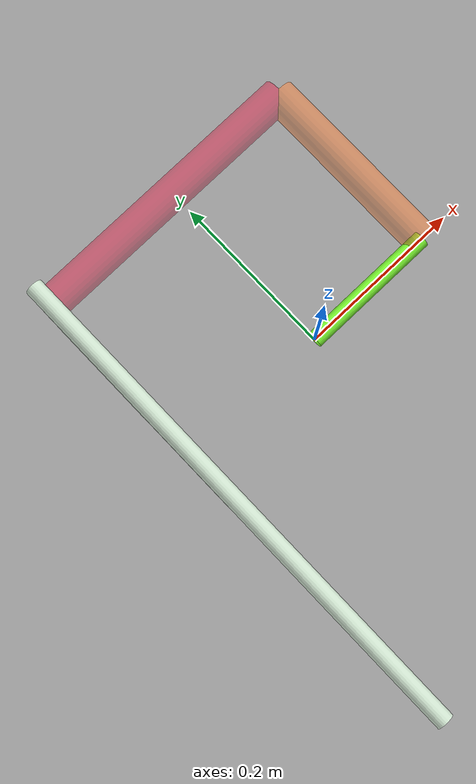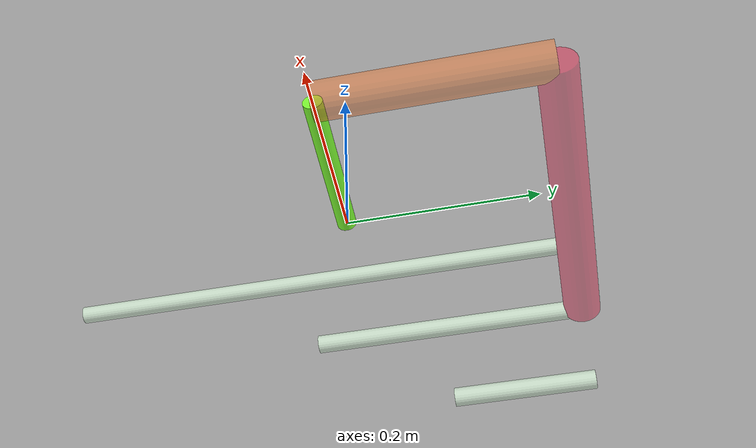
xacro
<?xml version="1.0" encoding="utf-8"?>
<robot xmlns:xacro="http://ros.org/wiki/xacro" name="example" >

  <!-- manipulator as it is -->
  <xacro:include filename="$(find example_description)/urdf/robot.xacro" />

  <!-- arm -->
  <xacro:example_xacro />

  <link name="world" />

    <joint name="joint_world_link001"
            type = "revolute">
        <origin xyz = "0 0 0" rpy="0 0 0" />
        <parent link="world"/>
        <child link="link_001" />
        <axis xyz="0 1 0" />
        <limit lower="-6" upper="6" effort="0" velocity="0" />
    </joint>
</robot>

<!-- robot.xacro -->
<robot xmlns:xacro="http://ros.org/wiki/xacro">

<xacro:macro name="example_xacro" params="">
<xacro:property name="l1_len" value="0.165"/>
<xacro:property name="l2_len" value="0.23"/>
<xacro:property name="l3_len" value="0.35"/>
<xacro:property name="l4_len" value="0.3"/>

    <link name="link_001">
        <visual>
            <origin xyz="${l1_len/2.} 0 0" rpy="0 ${pi/2} 0" />
            <geometry >
                <cylinder radius="0.01" length="${l1_len}"/>
            </geometry>
            <material name="link1_color">
                <color rgba="0.5 1 0.2 1"/>
            </material>
        </visual>
    </link>

    <link name="link_002">
        <visual>
            <origin xyz="${l2_len/2 * -5.00000000e-01} ${l2_len/2*8.66025404e-01} ${l2_len/2* 0}" rpy="1.5707963267948966 -1.0471975511965976 0.5235987755982987" />
            <geometry >
                <cylinder radius="0.02" length="${l2_len}"/>
            </geometry>
            <material name="link2_color">
                <color rgba="1 0.5 0.2 0.5"/>
            </material>
        </visual>
    </link>

    <joint name="joint_link001_link002" type = "revolute">
        <origin xyz = "${l1_len} 0 0" rpy="-0.7137243789447655 0.848062078981481 -0.8570719478501307" />
        <parent link="link_001"/>
        <child link="link_002" />
        <axis xyz="0.4330127 0.25 0.8660254" />
        <limit lower="-6" upper="6" effort="0" velocity="0" />
    </joint>

    <link name="link_003">
        <visual>
            <origin xyz="0 ${l3_len/2} 0" rpy="${-pi/2} 0 0" />
            <geometry >
                <cylinder radius="0.02" length="${l3_len}"/>
            </geometry>
            <material name="link3_color">
                <color rgba="1 0 0.2 0.4"/>
            </material>
        </visual>
    </link>

    <link name="link_004">
        <visual>
            <origin xyz="${l4_len/2.} 0 0" rpy="0 ${pi/2} 0" />
            <geometry >
                <cylinder radius="0.01" length="${l4_len}"/>
            </geometry>
            <material name="link4_color">
                <color rgba="0.9 1 0.9 0.8"/>
            </material>
        </visual>
        <visual>
            <origin xyz="${l4_len/4.} 0 ${l4_len/3}" rpy="${pi} ${pi/2} 0" />
            <geometry >
                <cylinder radius="0.01" length="${l4_len/2}"/>
            </geometry>
            <material name="link4_color"/>
        </visual>
        <visual>
            <origin xyz="${l4_len} 0 ${-l4_len/3}" rpy="${pi} ${pi/2} 0" />
            <geometry >
                <cylinder radius="0.01" length="${2* l4_len}"/>
            </geometry>
            <material name="link4_color"/>
        </visual>
    </link>

    <joint name="joint_link002_link003" type = "revolute">
        <origin xyz = "${l2_len * -5.00000000e-01} ${l2_len*8.66025404e-01} ${l2_len* 0}" rpy="-1.0471975511965976 0 2.0943951023931953" />
        <parent link="link_002"/>
        <child link="link_003" />
        <axis xyz="1 0 0" />
        <limit lower="-6" upper="6" effort="0" velocity="0" />
    </joint>

    <joint name="joint_link003_link004" type = "revolute">
        <origin xyz = " 0 ${l3_len} 0" rpy="0 ${-pi} 0" />
        <parent link="link_003"/>
        <child link="link_004" />
        <axis xyz="0 1 0" />
        <limit lower="-6" upper="6" effort="0" velocity="0" />
    </joint>

</xacro:macro>
</robot>
